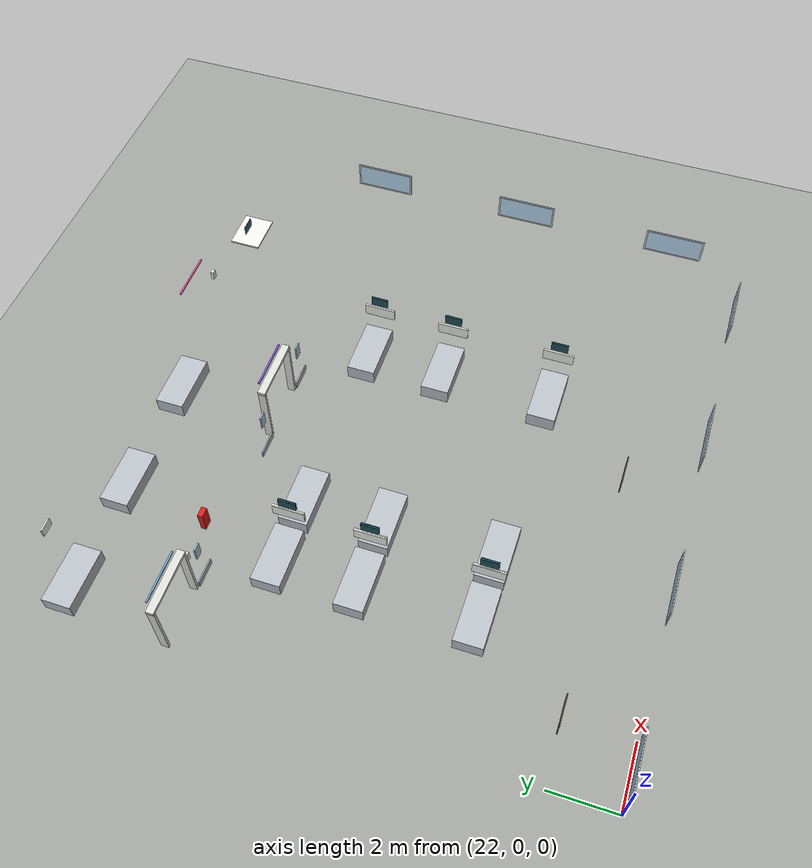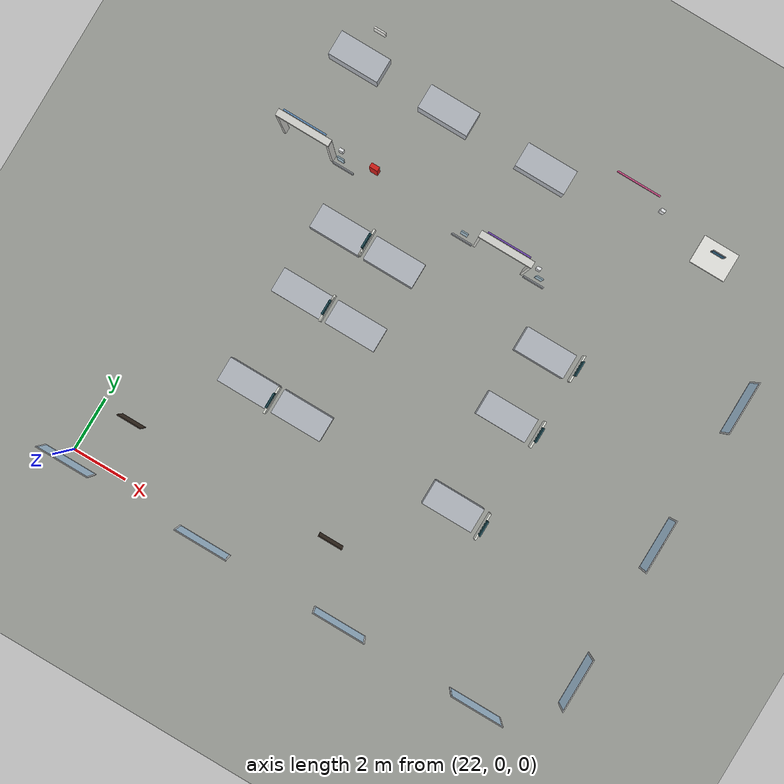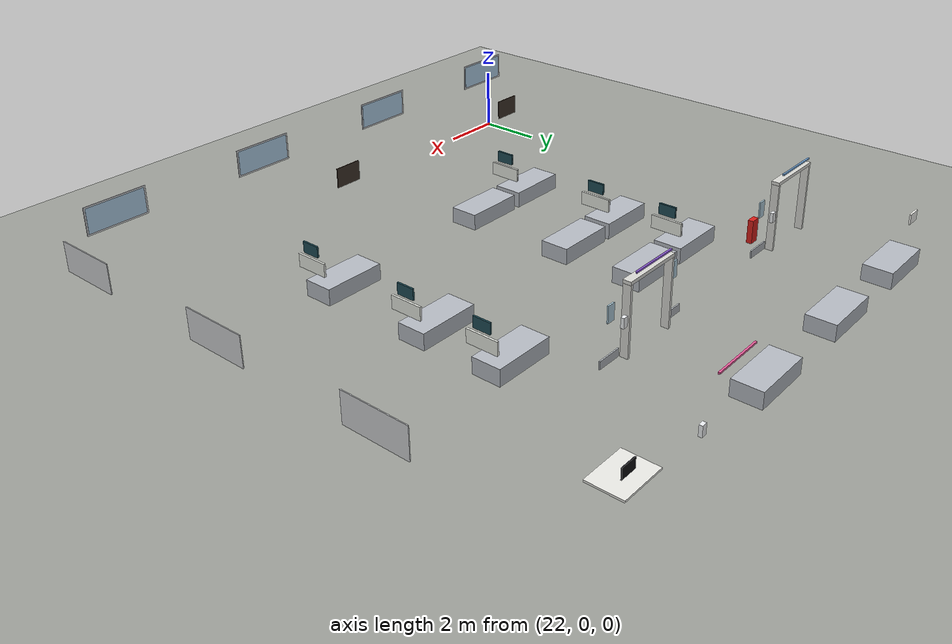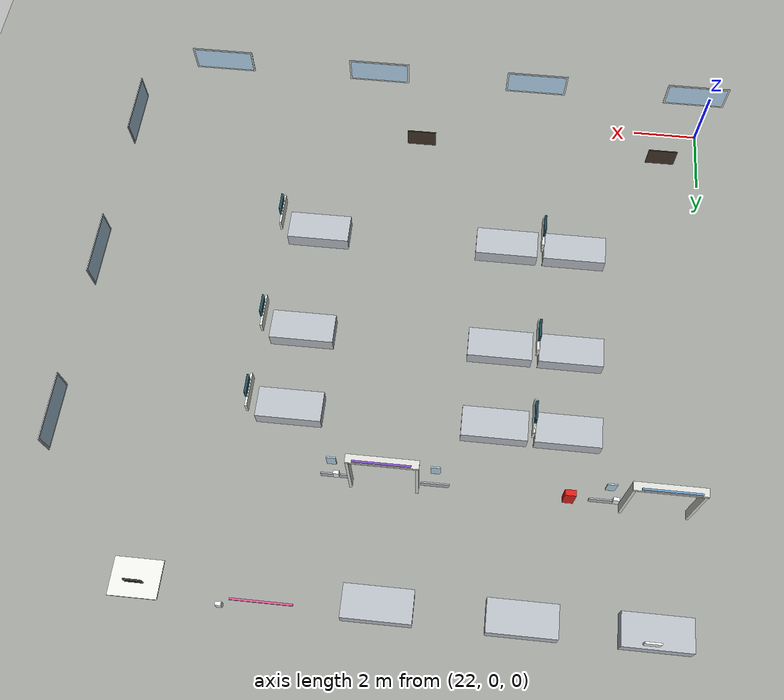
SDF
<sdf version="1.9">
 <world name="hospital">
  <model name="ground_plane">
   <static>true</static>
   <link name="link">
    <collision name="collision">
     <geometry><plane><normal>0 0 1</normal><size>200 200</size></plane></geometry>
    </collision>
    <visual name="visual">
     <pose>0 0 -0.03 0 0 0</pose>
     <cast_shadows>false</cast_shadows>
     <geometry><plane><normal>0 0 1</normal><size>200 200</size></plane></geometry>
     <material>
      <ambient>0.310 0.315 0.305 1.0</ambient>
      <diffuse>0.620 0.630 0.610 1.0</diffuse>
      <specular>0.14 0.14 0.14 1</specular>
      <emissive>0.000 0.000 0.000 1</emissive>
     </material>
    </visual>
   </link>
  </model>
  <model name="bed_19">
   <static>true</static>
   <pose>25.95 5.0 0.25 0 0 0</pose>
   <link name="link">
    <collision name="c">
     <geometry><box><size>1.8999999999999986 0.9000000000000004 0.5</size></box></geometry>
    </collision>
    <visual name="v">
     <visibility_flags>2</visibility_flags>
     <geometry><box><size>1.8999999999999986 0.9000000000000004 0.5</size></box></geometry>
     <material>
      <ambient>0.360 0.370 0.385 1.0</ambient>
      <diffuse>0.720 0.740 0.770 1.0</diffuse>
      <specular>0.14 0.14 0.14 1</specular>
      <emissive>0.000 0.000 0.000 1</emissive>
     </material>
    </visual>
   </link>
  </model>
  <model name="bed_21">
   <static>true</static>
   <pose>25.95 8.5 0.25 0 0 0</pose>
   <link name="link">
    <collision name="c">
     <geometry><box><size>1.8999999999999986 0.8999999999999986 0.5</size></box></geometry>
    </collision>
    <visual name="v">
     <visibility_flags>2</visibility_flags>
     <geometry><box><size>1.8999999999999986 0.8999999999999986 0.5</size></box></geometry>
     <material>
      <ambient>0.360 0.370 0.385 1.0</ambient>
      <diffuse>0.720 0.740 0.770 1.0</diffuse>
      <specular>0.14 0.14 0.14 1</specular>
      <emissive>0.000 0.000 0.000 1</emissive>
     </material>
    </visual>
   </link>
  </model>
  <model name="bed_22">
   <static>true</static>
   <pose>28.05 5.0 0.25 0 0 0</pose>
   <link name="link">
    <collision name="c">
     <geometry><box><size>1.8999999999999986 0.9000000000000004 0.5</size></box></geometry>
    </collision>
    <visual name="v">
     <visibility_flags>2</visibility_flags>
     <geometry><box><size>1.8999999999999986 0.9000000000000004 0.5</size></box></geometry>
     <material>
      <ambient>0.360 0.370 0.385 1.0</ambient>
      <diffuse>0.720 0.740 0.770 1.0</diffuse>
      <specular>0.14 0.14 0.14 1</specular>
      <emissive>0.000 0.000 0.000 1</emissive>
     </material>
    </visual>
   </link>
  </model>
  <model name="bed_23">
   <static>true</static>
   <pose>33.95 5.0 0.25 0 0 0</pose>
   <link name="link">
    <collision name="c">
     <geometry><box><size>1.8999999999999986 0.9000000000000004 0.5</size></box></geometry>
    </collision>
    <visual name="v">
     <visibility_flags>2</visibility_flags>
     <geometry><box><size>1.8999999999999986 0.9000000000000004 0.5</size></box></geometry>
     <material>
      <ambient>0.360 0.370 0.385 1.0</ambient>
      <diffuse>0.720 0.740 0.770 1.0</diffuse>
      <specular>0.14 0.14 0.14 1</specular>
      <emissive>0.000 0.000 0.000 1</emissive>
     </material>
    </visual>
   </link>
  </model>
  <model name="bed_24">
   <static>true</static>
   <pose>28.05 8.5 0.25 0 0 0</pose>
   <link name="link">
    <collision name="c">
     <geometry><box><size>1.8999999999999986 0.8999999999999986 0.5</size></box></geometry>
    </collision>
    <visual name="v">
     <visibility_flags>2</visibility_flags>
     <geometry><box><size>1.8999999999999986 0.8999999999999986 0.5</size></box></geometry>
     <material>
      <ambient>0.360 0.370 0.385 1.0</ambient>
      <diffuse>0.720 0.740 0.770 1.0</diffuse>
      <specular>0.14 0.14 0.14 1</specular>
      <emissive>0.000 0.000 0.000 1</emissive>
     </material>
    </visual>
   </link>
  </model>
  <model name="bed_25">
   <static>true</static>
   <pose>33.95 8.5 0.25 0 0 0</pose>
   <link name="link">
    <collision name="c">
     <geometry><box><size>1.8999999999999986 0.8999999999999986 0.5</size></box></geometry>
    </collision>
    <visual name="v">
     <visibility_flags>2</visibility_flags>
     <geometry><box><size>1.8999999999999986 0.8999999999999986 0.5</size></box></geometry>
     <material>
      <ambient>0.360 0.370 0.385 1.0</ambient>
      <diffuse>0.720 0.740 0.770 1.0</diffuse>
      <specular>0.14 0.14 0.14 1</specular>
      <emissive>0.000 0.000 0.000 1</emissive>
     </material>
    </visual>
   </link>
  </model>
  <model name="bed_27">
   <static>true</static>
   <pose>23.5 16.3 0.25 0 0 0</pose>
   <link name="link">
    <collision name="c">
     <geometry><box><size>1.8999999999999986 0.9000000000000004 0.5</size></box></geometry>
    </collision>
    <visual name="v">
     <visibility_flags>2</visibility_flags>
     <geometry><box><size>1.8999999999999986 0.9000000000000004 0.5</size></box></geometry>
     <material>
      <ambient>0.360 0.370 0.385 1.0</ambient>
      <diffuse>0.720 0.740 0.770 1.0</diffuse>
      <specular>0.14 0.14 0.14 1</specular>
      <emissive>0.000 0.000 0.000 1</emissive>
     </material>
    </visual>
   </link>
  </model>
  <model name="bed_30">
   <static>true</static>
   <pose>27.0 16.3 0.25 0 0 0</pose>
   <link name="link">
    <collision name="c">
     <geometry><box><size>1.8999999999999986 0.9000000000000004 0.5</size></box></geometry>
    </collision>
    <visual name="v">
     <visibility_flags>2</visibility_flags>
     <geometry><box><size>1.8999999999999986 0.9000000000000004 0.5</size></box></geometry>
     <material>
      <ambient>0.360 0.370 0.385 1.0</ambient>
      <diffuse>0.720 0.740 0.770 1.0</diffuse>
      <specular>0.14 0.14 0.14 1</specular>
      <emissive>0.000 0.000 0.000 1</emissive>
     </material>
    </visual>
   </link>
  </model>
  <model name="bed_31">
   <static>true</static>
   <pose>30.8 16.3 0.25 0 0 0</pose>
   <link name="link">
    <collision name="c">
     <geometry><box><size>1.8999999999999986 0.9000000000000004 0.5</size></box></geometry>
    </collision>
    <visual name="v">
     <visibility_flags>2</visibility_flags>
     <geometry><box><size>1.8999999999999986 0.9000000000000004 0.5</size></box></geometry>
     <material>
      <ambient>0.360 0.370 0.385 1.0</ambient>
      <diffuse>0.720 0.740 0.770 1.0</diffuse>
      <specular>0.14 0.14 0.14 1</specular>
      <emissive>0.000 0.000 0.000 1</emissive>
     </material>
    </visual>
   </link>
  </model>
  <model name="bed_45">
   <static>true</static>
   <pose>25.95 11.0 0.25 0 0 0</pose>
   <link name="link">
    <collision name="c">
     <geometry><box><size>1.8999999999999986 0.8999999999999986 0.5</size></box></geometry>
    </collision>
    <visual name="v">
     <visibility_flags>2</visibility_flags>
     <geometry><box><size>1.8999999999999986 0.8999999999999986 0.5</size></box></geometry>
     <material>
      <ambient>0.360 0.370 0.385 1.0</ambient>
      <diffuse>0.720 0.740 0.770 1.0</diffuse>
      <specular>0.14 0.14 0.14 1</specular>
      <emissive>0.000 0.000 0.000 1</emissive>
     </material>
    </visual>
   </link>
  </model>
  <model name="bed_46">
   <static>true</static>
   <pose>28.05 11.0 0.25 0 0 0</pose>
   <link name="link">
    <collision name="c">
     <geometry><box><size>1.8999999999999986 0.8999999999999986 0.5</size></box></geometry>
    </collision>
    <visual name="v">
     <visibility_flags>2</visibility_flags>
     <geometry><box><size>1.8999999999999986 0.8999999999999986 0.5</size></box></geometry>
     <material>
      <ambient>0.360 0.370 0.385 1.0</ambient>
      <diffuse>0.720 0.740 0.770 1.0</diffuse>
      <specular>0.14 0.14 0.14 1</specular>
      <emissive>0.000 0.000 0.000 1</emissive>
     </material>
    </visual>
   </link>
  </model>
  <model name="bed_47">
   <static>true</static>
   <pose>33.95 11.0 0.25 0 0 0</pose>
   <link name="link">
    <collision name="c">
     <geometry><box><size>1.8999999999999986 0.8999999999999986 0.5</size></box></geometry>
    </collision>
    <visual name="v">
     <visibility_flags>2</visibility_flags>
     <geometry><box><size>1.8999999999999986 0.8999999999999986 0.5</size></box></geometry>
     <material>
      <ambient>0.360 0.370 0.385 1.0</ambient>
      <diffuse>0.720 0.740 0.770 1.0</diffuse>
      <specular>0.14 0.14 0.14 1</specular>
      <emissive>0.000 0.000 0.000 1</emissive>
     </material>
    </visual>
   </link>
  </model>
  <model name="bed_19_panel">
   <static>true</static>
   <pose>27.009999999999998 5.0 1.15 0 0 0</pose>
   <link name="link">
    <visual name="v">
     <cast_shadows>false</cast_shadows>
     <geometry><box><size>0.06 0.9900000000000004 0.4</size></box></geometry>
     <material>
      <ambient>0.460 0.465 0.450 1.0</ambient>
      <diffuse>0.920 0.930 0.900 1.0</diffuse>
      <specular>0.14 0.14 0.14 1</specular>
      <emissive>0.000 0.000 0.000 1</emissive>
     </material>
    </visual>
   </link>
  </model>
  <model name="bed_19_monitor">
   <static>true</static>
   <pose>27.009999999999998 5.0 1.615 0 0 0</pose>
   <link name="link">
    <visual name="v">
     <cast_shadows>false</cast_shadows>
     <geometry><box><size>0.05 0.5445000000000003 0.33</size></box></geometry>
     <material>
      <ambient>0.060 0.150 0.170 1.0</ambient>
      <diffuse>0.120 0.300 0.340 1.0</diffuse>
      <specular>0.14 0.14 0.14 1</specular>
      <emissive>0.042 0.105 0.119 1</emissive>
     </material>
    </visual>
   </link>
  </model>
  <model name="bed_21_panel">
   <static>true</static>
   <pose>27.009999999999998 8.5 1.15 0 0 0</pose>
   <link name="link">
    <visual name="v">
     <cast_shadows>false</cast_shadows>
     <geometry><box><size>0.06 0.9899999999999985 0.4</size></box></geometry>
     <material>
      <ambient>0.460 0.465 0.450 1.0</ambient>
      <diffuse>0.920 0.930 0.900 1.0</diffuse>
      <specular>0.14 0.14 0.14 1</specular>
      <emissive>0.000 0.000 0.000 1</emissive>
     </material>
    </visual>
   </link>
  </model>
  <model name="bed_21_monitor">
   <static>true</static>
   <pose>27.009999999999998 8.5 1.615 0 0 0</pose>
   <link name="link">
    <visual name="v">
     <cast_shadows>false</cast_shadows>
     <geometry><box><size>0.05 0.5444999999999992 0.33</size></box></geometry>
     <material>
      <ambient>0.060 0.150 0.170 1.0</ambient>
      <diffuse>0.120 0.300 0.340 1.0</diffuse>
      <specular>0.14 0.14 0.14 1</specular>
      <emissive>0.042 0.105 0.119 1</emissive>
     </material>
    </visual>
   </link>
  </model>
  <model name="bed_22_panel">
   <static>true</static>
   <pose>26.990000000000002 5.0 1.15 0 0 0</pose>
   <link name="link">
    <visual name="v">
     <cast_shadows>false</cast_shadows>
     <geometry><box><size>0.06 0.9900000000000004 0.4</size></box></geometry>
     <material>
      <ambient>0.460 0.465 0.450 1.0</ambient>
      <diffuse>0.920 0.930 0.900 1.0</diffuse>
      <specular>0.14 0.14 0.14 1</specular>
      <emissive>0.000 0.000 0.000 1</emissive>
     </material>
    </visual>
   </link>
  </model>
  <model name="bed_22_monitor">
   <static>true</static>
   <pose>26.990000000000002 5.0 1.615 0 0 0</pose>
   <link name="link">
    <visual name="v">
     <cast_shadows>false</cast_shadows>
     <geometry><box><size>0.05 0.5445000000000003 0.33</size></box></geometry>
     <material>
      <ambient>0.060 0.150 0.170 1.0</ambient>
      <diffuse>0.120 0.300 0.340 1.0</diffuse>
      <specular>0.14 0.14 0.14 1</specular>
      <emissive>0.042 0.105 0.119 1</emissive>
     </material>
    </visual>
   </link>
  </model>
  <model name="bed_23_panel">
   <static>true</static>
   <pose>35.010000000000005 5.0 1.15 0 0 0</pose>
   <link name="link">
    <visual name="v">
     <cast_shadows>false</cast_shadows>
     <geometry><box><size>0.06 0.9900000000000004 0.4</size></box></geometry>
     <material>
      <ambient>0.460 0.465 0.450 1.0</ambient>
      <diffuse>0.920 0.930 0.900 1.0</diffuse>
      <specular>0.14 0.14 0.14 1</specular>
      <emissive>0.000 0.000 0.000 1</emissive>
     </material>
    </visual>
   </link>
  </model>
  <model name="bed_23_monitor">
   <static>true</static>
   <pose>35.010000000000005 5.0 1.615 0 0 0</pose>
   <link name="link">
    <visual name="v">
     <cast_shadows>false</cast_shadows>
     <geometry><box><size>0.05 0.5445000000000003 0.33</size></box></geometry>
     <material>
      <ambient>0.060 0.150 0.170 1.0</ambient>
      <diffuse>0.120 0.300 0.340 1.0</diffuse>
      <specular>0.14 0.14 0.14 1</specular>
      <emissive>0.042 0.105 0.119 1</emissive>
     </material>
    </visual>
   </link>
  </model>
  <model name="bed_24_panel">
   <static>true</static>
   <pose>26.990000000000002 8.5 1.15 0 0 0</pose>
   <link name="link">
    <visual name="v">
     <cast_shadows>false</cast_shadows>
     <geometry><box><size>0.06 0.9899999999999985 0.4</size></box></geometry>
     <material>
      <ambient>0.460 0.465 0.450 1.0</ambient>
      <diffuse>0.920 0.930 0.900 1.0</diffuse>
      <specular>0.14 0.14 0.14 1</specular>
      <emissive>0.000 0.000 0.000 1</emissive>
     </material>
    </visual>
   </link>
  </model>
  <model name="bed_24_monitor">
   <static>true</static>
   <pose>26.990000000000002 8.5 1.615 0 0 0</pose>
   <link name="link">
    <visual name="v">
     <cast_shadows>false</cast_shadows>
     <geometry><box><size>0.05 0.5444999999999992 0.33</size></box></geometry>
     <material>
      <ambient>0.060 0.150 0.170 1.0</ambient>
      <diffuse>0.120 0.300 0.340 1.0</diffuse>
      <specular>0.14 0.14 0.14 1</specular>
      <emissive>0.042 0.105 0.119 1</emissive>
     </material>
    </visual>
   </link>
  </model>
  <model name="bed_25_panel">
   <static>true</static>
   <pose>35.010000000000005 8.5 1.15 0 0 0</pose>
   <link name="link">
    <visual name="v">
     <cast_shadows>false</cast_shadows>
     <geometry><box><size>0.06 0.9899999999999985 0.4</size></box></geometry>
     <material>
      <ambient>0.460 0.465 0.450 1.0</ambient>
      <diffuse>0.920 0.930 0.900 1.0</diffuse>
      <specular>0.14 0.14 0.14 1</specular>
      <emissive>0.000 0.000 0.000 1</emissive>
     </material>
    </visual>
   </link>
  </model>
  <model name="bed_25_monitor">
   <static>true</static>
   <pose>35.010000000000005 8.5 1.615 0 0 0</pose>
   <link name="link">
    <visual name="v">
     <cast_shadows>false</cast_shadows>
     <geometry><box><size>0.05 0.5444999999999992 0.33</size></box></geometry>
     <material>
      <ambient>0.060 0.150 0.170 1.0</ambient>
      <diffuse>0.120 0.300 0.340 1.0</diffuse>
      <specular>0.14 0.14 0.14 1</specular>
      <emissive>0.042 0.105 0.119 1</emissive>
     </material>
    </visual>
   </link>
  </model>
  <model name="bed_45_panel">
   <static>true</static>
   <pose>27.009999999999998 11.0 1.15 0 0 0</pose>
   <link name="link">
    <visual name="v">
     <cast_shadows>false</cast_shadows>
     <geometry><box><size>0.06 0.9899999999999985 0.4</size></box></geometry>
     <material>
      <ambient>0.460 0.465 0.450 1.0</ambient>
      <diffuse>0.920 0.930 0.900 1.0</diffuse>
      <specular>0.14 0.14 0.14 1</specular>
      <emissive>0.000 0.000 0.000 1</emissive>
     </material>
    </visual>
   </link>
  </model>
  <model name="bed_45_monitor">
   <static>true</static>
   <pose>27.009999999999998 11.0 1.615 0 0 0</pose>
   <link name="link">
    <visual name="v">
     <cast_shadows>false</cast_shadows>
     <geometry><box><size>0.05 0.5444999999999992 0.33</size></box></geometry>
     <material>
      <ambient>0.060 0.150 0.170 1.0</ambient>
      <diffuse>0.120 0.300 0.340 1.0</diffuse>
      <specular>0.14 0.14 0.14 1</specular>
      <emissive>0.042 0.105 0.119 1</emissive>
     </material>
    </visual>
   </link>
  </model>
  <model name="bed_46_panel">
   <static>true</static>
   <pose>26.990000000000002 11.0 1.15 0 0 0</pose>
   <link name="link">
    <visual name="v">
     <cast_shadows>false</cast_shadows>
     <geometry><box><size>0.06 0.9899999999999985 0.4</size></box></geometry>
     <material>
      <ambient>0.460 0.465 0.450 1.0</ambient>
      <diffuse>0.920 0.930 0.900 1.0</diffuse>
      <specular>0.14 0.14 0.14 1</specular>
      <emissive>0.000 0.000 0.000 1</emissive>
     </material>
    </visual>
   </link>
  </model>
  <model name="bed_46_monitor">
   <static>true</static>
   <pose>26.990000000000002 11.0 1.615 0 0 0</pose>
   <link name="link">
    <visual name="v">
     <cast_shadows>false</cast_shadows>
     <geometry><box><size>0.05 0.5444999999999992 0.33</size></box></geometry>
     <material>
      <ambient>0.060 0.150 0.170 1.0</ambient>
      <diffuse>0.120 0.300 0.340 1.0</diffuse>
      <specular>0.14 0.14 0.14 1</specular>
      <emissive>0.042 0.105 0.119 1</emissive>
     </material>
    </visual>
   </link>
  </model>
  <model name="bed_47_panel">
   <static>true</static>
   <pose>35.010000000000005 11.0 1.15 0 0 0</pose>
   <link name="link">
    <visual name="v">
     <cast_shadows>false</cast_shadows>
     <geometry><box><size>0.06 0.9899999999999985 0.4</size></box></geometry>
     <material>
      <ambient>0.460 0.465 0.450 1.0</ambient>
      <diffuse>0.920 0.930 0.900 1.0</diffuse>
      <specular>0.14 0.14 0.14 1</specular>
      <emissive>0.000 0.000 0.000 1</emissive>
     </material>
    </visual>
   </link>
  </model>
  <model name="bed_47_monitor">
   <static>true</static>
   <pose>35.010000000000005 11.0 1.615 0 0 0</pose>
   <link name="link">
    <visual name="v">
     <cast_shadows>false</cast_shadows>
     <geometry><box><size>0.05 0.5444999999999992 0.33</size></box></geometry>
     <material>
      <ambient>0.060 0.150 0.170 1.0</ambient>
      <diffuse>0.120 0.300 0.340 1.0</diffuse>
      <specular>0.14 0.14 0.14 1</specular>
      <emissive>0.042 0.105 0.119 1</emissive>
     </material>
    </visual>
   </link>
  </model>
  <model name="nurse_desk_top">
   <static>true</static>
   <pose>37.0 16.4 1.2249999999999999 0 0 0</pose>
   <link name="link">
    <visual name="v">
     <geometry><box><size>1.300000000000003 1.0000000000000022 0.05</size></box></geometry>
     <material>
      <ambient>0.465 0.465 0.455 1.0</ambient>
      <diffuse>0.930 0.930 0.910 1.0</diffuse>
      <specular>0.14 0.14 0.14 1</specular>
      <emissive>0.000 0.000 0.000 1</emissive>
     </material>
    </visual>
   </link>
  </model>
  <model name="nurse_desk_monitor">
   <static>true</static>
   <pose>37.0 16.52 1.44 0 0 0</pose>
   <link name="link">
    <visual name="v">
     <geometry><box><size>0.48 0.03 0.3</size></box></geometry>
     <material>
      <ambient>0.030 0.030 0.035 1.0</ambient>
      <diffuse>0.060 0.060 0.070 1.0</diffuse>
      <specular>0.14 0.14 0.14 1</specular>
      <emissive>0.000 0.000 0.000 1</emissive>
     </material>
    </visual>
   </link>
  </model>
  <model name="nurse_desk_screen">
   <static>true</static>
   <pose>37.0 16.503999999999998 1.45 0 0 0</pose>
   <link name="link">
    <visual name="v">
     <cast_shadows>false</cast_shadows>
     <geometry><box><size>0.44 0.004 0.26</size></box></geometry>
     <material>
      <ambient>0.100 0.210 0.275 1.0</ambient>
      <diffuse>0.200 0.420 0.550 1.0</diffuse>
      <specular>0.14 0.14 0.14 1</specular>
      <emissive>0.120 0.252 0.330 1</emissive>
     </material>
    </visual>
   </link>
  </model>
  <model name="door_6_jamb0">
   <static>true</static>
   <pose>22.570000000000004 13.0 1.05 0 0 0</pose>
   <link name="link">
    <visual name="v">
     <visibility_flags>4</visibility_flags>
     <geometry><box><size>0.08 0.24000000000000002 2.1</size></box></geometry>
     <material>
      <ambient>0.430 0.430 0.420 1.0</ambient>
      <diffuse>0.860 0.860 0.840 1.0</diffuse>
      <specular>0.14 0.14 0.14 1</specular>
      <emissive>0.000 0.000 0.000 1</emissive>
     </material>
    </visual>
   </link>
  </model>
  <model name="door_6_jamb1">
   <static>true</static>
   <pose>24.429999999999996 13.0 1.05 0 0 0</pose>
   <link name="link">
    <visual name="v">
     <visibility_flags>4</visibility_flags>
     <geometry><box><size>0.08 0.24000000000000002 2.1</size></box></geometry>
     <material>
      <ambient>0.430 0.430 0.420 1.0</ambient>
      <diffuse>0.860 0.860 0.840 1.0</diffuse>
      <specular>0.14 0.14 0.14 1</specular>
      <emissive>0.000 0.000 0.000 1</emissive>
     </material>
    </visual>
   </link>
  </model>
  <model name="door_6_head">
   <static>true</static>
   <pose>23.5 13.0 2.15 0 0 0</pose>
   <link name="link">
    <visual name="v">
     <visibility_flags>4</visibility_flags>
     <geometry><box><size>1.959999999999997 0.24000000000000002 0.1</size></box></geometry>
     <material>
      <ambient>0.430 0.430 0.420 1.0</ambient>
      <diffuse>0.860 0.860 0.840 1.0</diffuse>
      <specular>0.14 0.14 0.14 1</specular>
      <emissive>0.000 0.000 0.000 1</emissive>
     </material>
    </visual>
   </link>
  </model>
  <model name="door_6_glass1">
   <static>true</static>
   <pose>24.909999999999997 12.859 1.45 0 0 0</pose>
   <link name="link">
    <visual name="v">
     <visibility_flags>4</visibility_flags>
     <geometry><box><size>0.26 0.04 0.5</size></box></geometry>
     <material>
      <ambient>0.350 0.410 0.440 1.0</ambient>
      <diffuse>0.700 0.820 0.880 1.0</diffuse>
      <specular>0.14 0.14 0.14 1</specular>
      <emissive>0.140 0.164 0.176 1</emissive>
     </material>
    </visual>
   </link>
  </model>
  <model name="door_6_kick1">
   <static>true</static>
   <pose>24.909999999999997 12.859 0.14 0 0 0</pose>
   <link name="link">
    <visual name="v">
     <visibility_flags>4</visibility_flags>
     <geometry><box><size>0.8 0.04 0.24</size></box></geometry>
     <material>
      <ambient>0.350 0.360 0.370 1.0</ambient>
      <diffuse>0.700 0.720 0.740 1.0</diffuse>
      <specular>0.14 0.14 0.14 1</specular>
      <emissive>0.000 0.000 0.000 1</emissive>
     </material>
    </visual>
   </link>
  </model>
  <model name="door_7_jamb0">
   <static>true</static>
   <pose>30.070000000000004 13.0 1.05 0 0 0</pose>
   <link name="link">
    <visual name="v">
     <visibility_flags>4</visibility_flags>
     <geometry><box><size>0.08 0.24000000000000002 2.1</size></box></geometry>
     <material>
      <ambient>0.430 0.430 0.420 1.0</ambient>
      <diffuse>0.860 0.860 0.840 1.0</diffuse>
      <specular>0.14 0.14 0.14 1</specular>
      <emissive>0.000 0.000 0.000 1</emissive>
     </material>
    </visual>
   </link>
  </model>
  <model name="door_7_jamb1">
   <static>true</static>
   <pose>31.93 13.0 1.05 0 0 0</pose>
   <link name="link">
    <visual name="v">
     <visibility_flags>4</visibility_flags>
     <geometry><box><size>0.08 0.24000000000000002 2.1</size></box></geometry>
     <material>
      <ambient>0.430 0.430 0.420 1.0</ambient>
      <diffuse>0.860 0.860 0.840 1.0</diffuse>
      <specular>0.14 0.14 0.14 1</specular>
      <emissive>0.000 0.000 0.000 1</emissive>
     </material>
    </visual>
   </link>
  </model>
  <model name="door_7_head">
   <static>true</static>
   <pose>31.0 13.0 2.15 0 0 0</pose>
   <link name="link">
    <visual name="v">
     <visibility_flags>4</visibility_flags>
     <geometry><box><size>1.9600000000000006 0.24000000000000002 0.1</size></box></geometry>
     <material>
      <ambient>0.430 0.430 0.420 1.0</ambient>
      <diffuse>0.860 0.860 0.840 1.0</diffuse>
      <specular>0.14 0.14 0.14 1</specular>
      <emissive>0.000 0.000 0.000 1</emissive>
     </material>
    </visual>
   </link>
  </model>
  <model name="door_7_glass0">
   <static>true</static>
   <pose>29.590000000000003 12.859 1.45 0 0 0</pose>
   <link name="link">
    <visual name="v">
     <visibility_flags>4</visibility_flags>
     <geometry><box><size>0.26 0.04 0.5</size></box></geometry>
     <material>
      <ambient>0.350 0.410 0.440 1.0</ambient>
      <diffuse>0.700 0.820 0.880 1.0</diffuse>
      <specular>0.14 0.14 0.14 1</specular>
      <emissive>0.140 0.164 0.176 1</emissive>
     </material>
    </visual>
   </link>
  </model>
  <model name="door_7_kick0">
   <static>true</static>
   <pose>29.590000000000003 12.859 0.14 0 0 0</pose>
   <link name="link">
    <visual name="v">
     <visibility_flags>4</visibility_flags>
     <geometry><box><size>0.8 0.04 0.24</size></box></geometry>
     <material>
      <ambient>0.350 0.360 0.370 1.0</ambient>
      <diffuse>0.700 0.720 0.740 1.0</diffuse>
      <specular>0.14 0.14 0.14 1</specular>
      <emissive>0.000 0.000 0.000 1</emissive>
     </material>
    </visual>
   </link>
  </model>
  <model name="door_7_glass1">
   <static>true</static>
   <pose>32.410000000000004 12.859 1.45 0 0 0</pose>
   <link name="link">
    <visual name="v">
     <visibility_flags>4</visibility_flags>
     <geometry><box><size>0.26 0.04 0.5</size></box></geometry>
     <material>
      <ambient>0.350 0.410 0.440 1.0</ambient>
      <diffuse>0.700 0.820 0.880 1.0</diffuse>
      <specular>0.14 0.14 0.14 1</specular>
      <emissive>0.140 0.164 0.176 1</emissive>
     </material>
    </visual>
   </link>
  </model>
  <model name="door_7_kick1">
   <static>true</static>
   <pose>32.410000000000004 12.859 0.14 0 0 0</pose>
   <link name="link">
    <visual name="v">
     <visibility_flags>4</visibility_flags>
     <geometry><box><size>0.8 0.04 0.24</size></box></geometry>
     <material>
      <ambient>0.350 0.360 0.370 1.0</ambient>
      <diffuse>0.700 0.720 0.740 1.0</diffuse>
      <specular>0.14 0.14 0.14 1</specular>
      <emissive>0.000 0.000 0.000 1</emissive>
     </material>
    </visual>
   </link>
  </model>
  <model name="sign_female_ward_glow">
   <static>true</static>
   <pose>33.5 16.872 2.3850000000000002 0 0 0</pose>
   <link name="link">
    <visual name="v">
     <cast_shadows>false</cast_shadows>
     <geometry><box><size>1.568 0.049 0.05</size></box></geometry>
     <material>
      <ambient>0.450 0.175 0.300 1.0</ambient>
      <diffuse>0.900 0.350 0.600 1.0</diffuse>
      <specular>0.14 0.14 0.14 1</specular>
      <emissive>0.765 0.297 0.510 1</emissive>
     </material>
    </visual>
   </link>
  </model>
  <model name="sign_general_ward_3_glow">
   <static>true</static>
   <pose>23.5 13.128 2.3850000000000002 0 0 0</pose>
   <link name="link">
    <visual name="v">
     <cast_shadows>false</cast_shadows>
     <geometry><box><size>1.568 0.049 0.05</size></box></geometry>
     <material>
      <ambient>0.225 0.325 0.425 1.0</ambient>
      <diffuse>0.450 0.650 0.850 1.0</diffuse>
      <specular>0.14 0.14 0.14 1</specular>
      <emissive>0.383 0.552 0.722 1</emissive>
     </material>
    </visual>
   </link>
  </model>
  <model name="sign_general_ward_2_glow">
   <static>true</static>
   <pose>31.0 13.128 2.3850000000000002 0 0 0</pose>
   <link name="link">
    <visual name="v">
     <cast_shadows>false</cast_shadows>
     <geometry><box><size>1.568 0.049 0.05</size></box></geometry>
     <material>
      <ambient>0.275 0.175 0.425 1.0</ambient>
      <diffuse>0.550 0.350 0.850 1.0</diffuse>
      <specular>0.14 0.14 0.14 1</specular>
      <emissive>0.468 0.297 0.722 1</emissive>
     </material>
    </visual>
   </link>
  </model>
  <model name="wall_0_winf4">
   <static>true</static>
   <pose>22.5125 0.112 2.225 0 0 0</pose>
   <link name="link">
    <visual name="v">
     <cast_shadows>false</cast_shadows>
     <geometry><box><size>1.9000000000000001 0.024 0.85</size></box></geometry>
     <material>
      <ambient>0.410 0.415 0.420 1.0</ambient>
      <diffuse>0.820 0.830 0.840 1.0</diffuse>
      <specular>0.14 0.14 0.14 1</specular>
      <emissive>0.000 0.000 0.000 1</emissive>
     </material>
    </visual>
   </link>
  </model>
  <model name="wall_0_win4">
   <static>true</static>
   <pose>22.5125 0.12 2.225 0 0 0</pose>
   <link name="link">
    <visual name="v">
     <cast_shadows>false</cast_shadows>
     <geometry><box><size>1.8 0.012 0.75</size></box></geometry>
     <material>
      <ambient>0.360 0.425 0.475 1.0</ambient>
      <diffuse>0.720 0.850 0.950 1.0</diffuse>
      <specular>0.14 0.14 0.14 1</specular>
      <emissive>0.468 0.552 0.617 1</emissive>
     </material>
    </visual>
   </link>
  </model>
  <model name="wall_0_winf5">
   <static>true</static>
   <pose>27.5375 0.112 2.225 0 0 0</pose>
   <link name="link">
    <visual name="v">
     <cast_shadows>false</cast_shadows>
     <geometry><box><size>1.9000000000000001 0.024 0.85</size></box></geometry>
     <material>
      <ambient>0.410 0.415 0.420 1.0</ambient>
      <diffuse>0.820 0.830 0.840 1.0</diffuse>
      <specular>0.14 0.14 0.14 1</specular>
      <emissive>0.000 0.000 0.000 1</emissive>
     </material>
    </visual>
   </link>
  </model>
  <model name="wall_0_win5">
   <static>true</static>
   <pose>27.5375 0.12 2.225 0 0 0</pose>
   <link name="link">
    <visual name="v">
     <cast_shadows>false</cast_shadows>
     <geometry><box><size>1.8 0.012 0.75</size></box></geometry>
     <material>
      <ambient>0.360 0.425 0.475 1.0</ambient>
      <diffuse>0.720 0.850 0.950 1.0</diffuse>
      <specular>0.14 0.14 0.14 1</specular>
      <emissive>0.468 0.552 0.617 1</emissive>
     </material>
    </visual>
   </link>
  </model>
  <model name="wall_0_winf6">
   <static>true</static>
   <pose>32.5625 0.112 2.225 0 0 0</pose>
   <link name="link">
    <visual name="v">
     <cast_shadows>false</cast_shadows>
     <geometry><box><size>1.9000000000000001 0.024 0.85</size></box></geometry>
     <material>
      <ambient>0.410 0.415 0.420 1.0</ambient>
      <diffuse>0.820 0.830 0.840 1.0</diffuse>
      <specular>0.14 0.14 0.14 1</specular>
      <emissive>0.000 0.000 0.000 1</emissive>
     </material>
    </visual>
   </link>
  </model>
  <model name="wall_0_win6">
   <static>true</static>
   <pose>32.5625 0.12 2.225 0 0 0</pose>
   <link name="link">
    <visual name="v">
     <cast_shadows>false</cast_shadows>
     <geometry><box><size>1.8 0.012 0.75</size></box></geometry>
     <material>
      <ambient>0.360 0.425 0.475 1.0</ambient>
      <diffuse>0.720 0.850 0.950 1.0</diffuse>
      <specular>0.14 0.14 0.14 1</specular>
      <emissive>0.468 0.552 0.617 1</emissive>
     </material>
    </visual>
   </link>
  </model>
  <model name="wall_0_winf7">
   <static>true</static>
   <pose>37.5875 0.112 2.225 0 0 0</pose>
   <link name="link">
    <visual name="v">
     <cast_shadows>false</cast_shadows>
     <geometry><box><size>1.9000000000000001 0.024 0.85</size></box></geometry>
     <material>
      <ambient>0.410 0.415 0.420 1.0</ambient>
      <diffuse>0.820 0.830 0.840 1.0</diffuse>
      <specular>0.14 0.14 0.14 1</specular>
      <emissive>0.000 0.000 0.000 1</emissive>
     </material>
    </visual>
   </link>
  </model>
  <model name="wall_0_win7">
   <static>true</static>
   <pose>37.5875 0.12 2.225 0 0 0</pose>
   <link name="link">
    <visual name="v">
     <cast_shadows>false</cast_shadows>
     <geometry><box><size>1.8 0.012 0.75</size></box></geometry>
     <material>
      <ambient>0.360 0.425 0.475 1.0</ambient>
      <diffuse>0.720 0.850 0.950 1.0</diffuse>
      <specular>0.14 0.14 0.14 1</specular>
      <emissive>0.468 0.552 0.617 1</emissive>
     </material>
    </visual>
   </link>
  </model>
  <model name="wall_3_winf0">
   <static>true</static>
   <pose>39.888 2.416666666666665 2.225 0 0 0</pose>
   <link name="link">
    <visual name="v">
     <cast_shadows>false</cast_shadows>
     <geometry><box><size>0.024 1.9000000000000001 0.85</size></box></geometry>
     <material>
      <ambient>0.410 0.415 0.420 1.0</ambient>
      <diffuse>0.820 0.830 0.840 1.0</diffuse>
      <specular>0.14 0.14 0.14 1</specular>
      <emissive>0.000 0.000 0.000 1</emissive>
     </material>
    </visual>
   </link>
  </model>
  <model name="wall_3_win0">
   <static>true</static>
   <pose>39.879999999999995 2.416666666666665 2.225 0 0 0</pose>
   <link name="link">
    <visual name="v">
     <cast_shadows>false</cast_shadows>
     <geometry><box><size>0.012 1.8 0.75</size></box></geometry>
     <material>
      <ambient>0.360 0.425 0.475 1.0</ambient>
      <diffuse>0.720 0.850 0.950 1.0</diffuse>
      <specular>0.14 0.14 0.14 1</specular>
      <emissive>0.468 0.552 0.617 1</emissive>
     </material>
    </visual>
   </link>
  </model>
  <model name="wall_3_winf1">
   <static>true</static>
   <pose>39.888 7.449999999999999 2.225 0 0 0</pose>
   <link name="link">
    <visual name="v">
     <cast_shadows>false</cast_shadows>
     <geometry><box><size>0.024 1.9000000000000001 0.85</size></box></geometry>
     <material>
      <ambient>0.410 0.415 0.420 1.0</ambient>
      <diffuse>0.820 0.830 0.840 1.0</diffuse>
      <specular>0.14 0.14 0.14 1</specular>
      <emissive>0.000 0.000 0.000 1</emissive>
     </material>
    </visual>
   </link>
  </model>
  <model name="wall_3_win1">
   <static>true</static>
   <pose>39.879999999999995 7.449999999999999 2.225 0 0 0</pose>
   <link name="link">
    <visual name="v">
     <cast_shadows>false</cast_shadows>
     <geometry><box><size>0.012 1.8 0.75</size></box></geometry>
     <material>
      <ambient>0.360 0.425 0.475 1.0</ambient>
      <diffuse>0.720 0.850 0.950 1.0</diffuse>
      <specular>0.14 0.14 0.14 1</specular>
      <emissive>0.468 0.552 0.617 1</emissive>
     </material>
    </visual>
   </link>
  </model>
  <model name="wall_3_winf2">
   <static>true</static>
   <pose>39.888 12.483333333333334 2.225 0 0 0</pose>
   <link name="link">
    <visual name="v">
     <cast_shadows>false</cast_shadows>
     <geometry><box><size>0.024 1.9000000000000001 0.85</size></box></geometry>
     <material>
      <ambient>0.410 0.415 0.420 1.0</ambient>
      <diffuse>0.820 0.830 0.840 1.0</diffuse>
      <specular>0.14 0.14 0.14 1</specular>
      <emissive>0.000 0.000 0.000 1</emissive>
     </material>
    </visual>
   </link>
  </model>
  <model name="wall_3_win2">
   <static>true</static>
   <pose>39.879999999999995 12.483333333333334 2.225 0 0 0</pose>
   <link name="link">
    <visual name="v">
     <cast_shadows>false</cast_shadows>
     <geometry><box><size>0.012 1.8 0.75</size></box></geometry>
     <material>
      <ambient>0.360 0.425 0.475 1.0</ambient>
      <diffuse>0.720 0.850 0.950 1.0</diffuse>
      <specular>0.14 0.14 0.14 1</specular>
      <emissive>0.468 0.552 0.617 1</emissive>
     </material>
    </visual>
   </link>
  </model>
  <model name="clock">
   <static>true</static>
   <pose>24.0 16.875 2.1 0 0 0</pose>
   <link name="link">
    <visual name="v">
     <cast_shadows>false</cast_shadows>
     <geometry><box><size>0.42 0.05 0.3</size></box></geometry>
     <material>
      <ambient>0.480 0.480 0.470 1.0</ambient>
      <diffuse>0.960 0.960 0.940 1.0</diffuse>
      <specular>0.14 0.14 0.14 1</specular>
      <emissive>0.240 0.240 0.235 1</emissive>
     </material>
    </visual>
   </link>
  </model>
  <model name="dispenser_2">
   <static>true</static>
   <pose>34.75000000000001 16.85 1.23 0 0 0</pose>
   <link name="link">
    <visual name="v">
     <cast_shadows>false</cast_shadows>
     <geometry><box><size>0.16 0.1 0.3</size></box></geometry>
     <material>
      <ambient>0.470 0.475 0.480 1.0</ambient>
      <diffuse>0.940 0.950 0.960 1.0</diffuse>
      <specular>0.14 0.14 0.14 1</specular>
      <emissive>0.000 0.000 0.000 1</emissive>
     </material>
    </visual>
   </link>
  </model>
  <model name="dispenser_6">
   <static>true</static>
   <pose>24.75 13.15 1.23 0 0 0</pose>
   <link name="link">
    <visual name="v">
     <cast_shadows>false</cast_shadows>
     <geometry><box><size>0.16 0.1 0.3</size></box></geometry>
     <material>
      <ambient>0.470 0.475 0.480 1.0</ambient>
      <diffuse>0.940 0.950 0.960 1.0</diffuse>
      <specular>0.14 0.14 0.14 1</specular>
      <emissive>0.000 0.000 0.000 1</emissive>
     </material>
    </visual>
   </link>
  </model>
  <model name="dispenser_7">
   <static>true</static>
   <pose>32.25 13.15 1.23 0 0 0</pose>
   <link name="link">
    <visual name="v">
     <cast_shadows>false</cast_shadows>
     <geometry><box><size>0.16 0.1 0.3</size></box></geometry>
     <material>
      <ambient>0.470 0.475 0.480 1.0</ambient>
      <diffuse>0.940 0.950 0.960 1.0</diffuse>
      <specular>0.14 0.14 0.14 1</specular>
      <emissive>0.000 0.000 0.000 1</emissive>
     </material>
    </visual>
   </link>
  </model>
  <model name="extinguisher_1">
   <static>true</static>
   <pose>26.0 13.18 1.3 0 0 0</pose>
   <link name="link">
    <visual name="v">
     <cast_shadows>false</cast_shadows>
     <geometry><box><size>0.3 0.16 0.7</size></box></geometry>
     <material>
      <ambient>0.425 0.060 0.050 1.0</ambient>
      <diffuse>0.850 0.120 0.100 1.0</diffuse>
      <specular>0.14 0.14 0.14 1</specular>
      <emissive>0.000 0.000 0.000 1</emissive>
     </material>
    </visual>
   </link>
  </model>
  <model name="art_general_ward_3_frame">
   <static>true</static>
   <pose>23.5 2.12 1.62 0 0 0</pose>
   <link name="link">
    <visual name="v">
     <cast_shadows>false</cast_shadows>
     <geometry><box><size>0.88 0.03 0.62</size></box></geometry>
     <material>
      <ambient>0.125 0.100 0.080 1.0</ambient>
      <diffuse>0.250 0.200 0.160 1.0</diffuse>
      <specular>0.14 0.14 0.14 1</specular>
      <emissive>0.000 0.000 0.000 1</emissive>
     </material>
    </visual>
   </link>
  </model>
  <model name="art_general_ward_3">
   <static>true</static>
   <pose>23.5 2.1140000000000003 1.62 0 0 0</pose>
   <link name="link">
    <visual name="v">
     <cast_shadows>false</cast_shadows>
     <geometry><box><size>0.8 0.02 0.5</size></box></geometry>
     <material>
      <ambient>0.343 0.373 0.403 1.0</ambient>
      <diffuse>0.685 0.745 0.805 1.0</diffuse>
      <specular>0.14 0.14 0.14 1</specular>
      <emissive>0.000 0.000 0.000 1</emissive>
     </material>
    </visual>
   </link>
  </model>
  <model name="art_general_ward_2_frame">
   <static>true</static>
   <pose>31.0 2.12 1.62 0 0 0</pose>
   <link name="link">
    <visual name="v">
     <cast_shadows>false</cast_shadows>
     <geometry><box><size>0.88 0.03 0.62</size></box></geometry>
     <material>
      <ambient>0.125 0.100 0.080 1.0</ambient>
      <diffuse>0.250 0.200 0.160 1.0</diffuse>
      <specular>0.14 0.14 0.14 1</specular>
      <emissive>0.000 0.000 0.000 1</emissive>
     </material>
    </visual>
   </link>
  </model>
  <model name="art_general_ward_2">
   <static>true</static>
   <pose>31.0 2.1140000000000003 1.62 0 0 0</pose>
   <link name="link">
    <visual name="v">
     <cast_shadows>false</cast_shadows>
     <geometry><box><size>0.8 0.02 0.5</size></box></geometry>
     <material>
      <ambient>0.358 0.328 0.403 1.0</ambient>
      <diffuse>0.715 0.655 0.805 1.0</diffuse>
      <specular>0.14 0.14 0.14 1</specular>
      <emissive>0.000 0.000 0.000 1</emissive>
     </material>
    </visual>
   </link>
  </model>
 </world>
</sdf>
